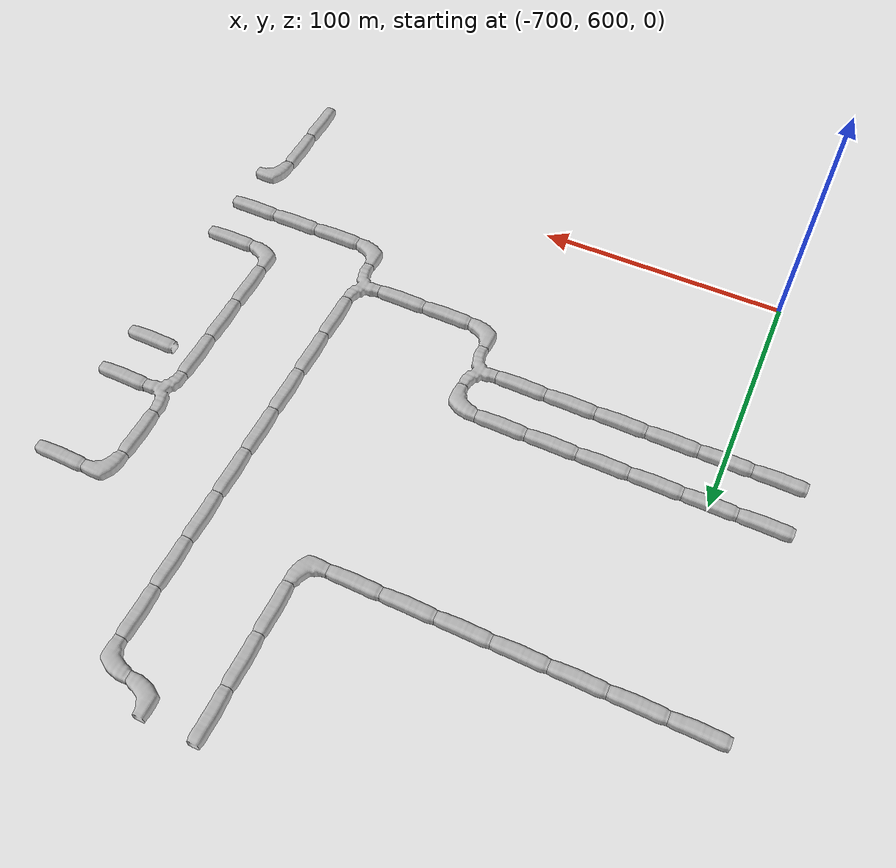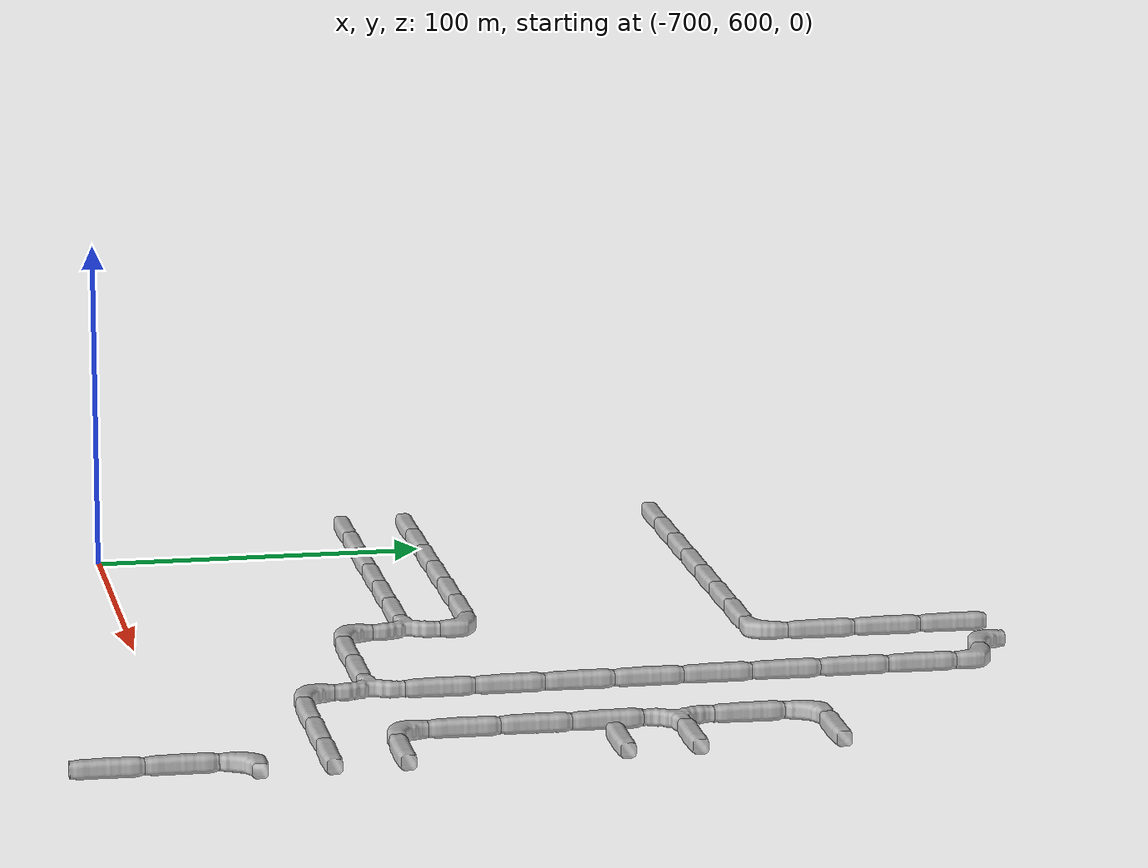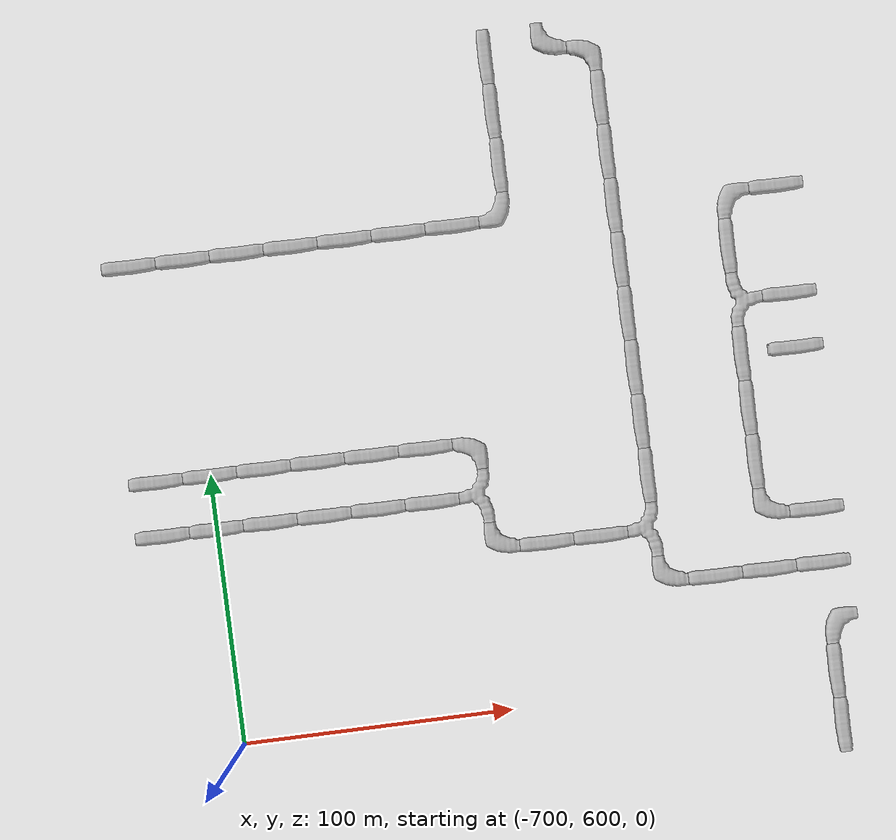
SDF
<sdf version="1.6">
 <world name="cave_32000">
  <include>
   <static>true</static>
   <name>cave_-24_29</name>
   <pose>-480 580 0 0 0 0.0</pose>
   <uri>model://cave_straight_20m</uri>
  </include>
  <include>
   <static>true</static>
   <name>cave_-24_30</name>
   <pose>-480 600 0 0 0 0.0</pose>
   <uri>model://cave_straight_20m</uri>
  </include>
  <include>
   <static>true</static>
   <name>cave_-24_31</name>
   <pose>-480 620 0 0 0 -1.5707963267948966</pose>
   <uri>model://cave_L_20m</uri>
  </include>
  <include>
   <static>true</static>
   <name>cave_-24_32</name>
   <pose>-480 640 0 0 0 1.5707963267948966</pose>
   <uri>model://cave_straight_20m</uri>
  </include>
  <include>
   <static>true</static>
   <name>cave_-25_32</name>
   <pose>-500 640 0 0 0 1.5707963267948966</pose>
   <uri>model://cave_straight_20m</uri>
  </include>
  <include>
   <static>true</static>
   <name>cave_-26_32</name>
   <pose>-520 640 0 0 0 1.5707963267948966</pose>
   <uri>model://cave_straight_20m</uri>
  </include>
  <include>
   <static>true</static>
   <name>cave_-27_32</name>
   <pose>-540 640 0 0 0 0.0</pose>
   <uri>model://cave_L_20m</uri>
  </include>
  <include>
   <static>true</static>
   <name>cave_-27_33</name>
   <pose>-540 660 0 0 0 1.5707963267948966</pose>
   <uri>model://cave_3way_20m</uri>
  </include>
  <include>
   <static>true</static>
   <name>cave_-28_33</name>
   <pose>-560 660 0 0 0 1.5707963267948966</pose>
   <uri>model://cave_straight_20m</uri>
  </include>
  <include>
   <static>true</static>
   <name>cave_-29_33</name>
   <pose>-580 660 0 0 0 1.5707963267948966</pose>
   <uri>model://cave_straight_20m</uri>
  </include>
  <include>
   <static>true</static>
   <name>cave_-30_33</name>
   <pose>-600 660 0 0 0 0.0</pose>
   <uri>model://cave_L_20m</uri>
  </include>
  <include>
   <static>true</static>
   <name>cave_-30_34</name>
   <pose>-600 680 0 0 0 1.5707963267948966</pose>
   <uri>model://cave_3way_20m</uri>
  </include>
  <include>
   <static>true</static>
   <name>cave_-31_34</name>
   <pose>-620 680 0 0 0 1.5707963267948966</pose>
   <uri>model://cave_straight_20m</uri>
  </include>
  <include>
   <static>true</static>
   <name>cave_-32_34</name>
   <pose>-640 680 0 0 0 1.5707963267948966</pose>
   <uri>model://cave_straight_20m</uri>
  </include>
  <include>
   <static>true</static>
   <name>cave_-33_34</name>
   <pose>-660 680 0 0 0 1.5707963267948966</pose>
   <uri>model://cave_straight_20m</uri>
  </include>
  <include>
   <static>true</static>
   <name>cave_-34_34</name>
   <pose>-680 680 0 0 0 1.5707963267948966</pose>
   <uri>model://cave_straight_20m</uri>
  </include>
  <include>
   <static>true</static>
   <name>cave_-35_34</name>
   <pose>-700 680 0 0 0 1.5707963267948966</pose>
   <uri>model://cave_straight_20m</uri>
  </include>
  <include>
   <static>true</static>
   <name>cave_-36_34</name>
   <pose>-720 680 0 0 0 1.5707963267948966</pose>
   <uri>model://cave_straight_20m</uri>
  </include>
  <include>
   <static>true</static>
   <name>cave_-30_35</name>
   <pose>-600 700 0 0 0 3.141592653589793</pose>
   <uri>model://cave_L_20m</uri>
  </include>
  <include>
   <static>true</static>
   <name>cave_-31_35</name>
   <pose>-620 700 0 0 0 1.5707963267948966</pose>
   <uri>model://cave_straight_20m</uri>
  </include>
  <include>
   <static>true</static>
   <name>cave_-32_35</name>
   <pose>-640 700 0 0 0 1.5707963267948966</pose>
   <uri>model://cave_straight_20m</uri>
  </include>
  <include>
   <static>true</static>
   <name>cave_-33_35</name>
   <pose>-660 700 0 0 0 1.5707963267948966</pose>
   <uri>model://cave_straight_20m</uri>
  </include>
  <include>
   <static>true</static>
   <name>cave_-34_35</name>
   <pose>-680 700 0 0 0 1.5707963267948966</pose>
   <uri>model://cave_straight_20m</uri>
  </include>
  <include>
   <static>true</static>
   <name>cave_-35_35</name>
   <pose>-700 700 0 0 0 1.5707963267948966</pose>
   <uri>model://cave_straight_20m</uri>
  </include>
  <include>
   <static>true</static>
   <name>cave_-36_35</name>
   <pose>-720 700 0 0 0 1.5707963267948966</pose>
   <uri>model://cave_straight_20m</uri>
  </include>
  <include>
   <static>true</static>
   <name>cave_-36_39</name>
   <pose>-720 780 0 0 0 1.5707963267948966</pose>
   <uri>model://cave_straight_20m</uri>
  </include>
  <include>
   <static>true</static>
   <name>cave_-35_39</name>
   <pose>-700 780 0 0 0 1.5707963267948966</pose>
   <uri>model://cave_straight_20m</uri>
  </include>
  <include>
   <static>true</static>
   <name>cave_-34_39</name>
   <pose>-680 780 0 0 0 1.5707963267948966</pose>
   <uri>model://cave_straight_20m</uri>
  </include>
  <include>
   <static>true</static>
   <name>cave_-33_39</name>
   <pose>-660 780 0 0 0 1.5707963267948966</pose>
   <uri>model://cave_straight_20m</uri>
  </include>
  <include>
   <static>true</static>
   <name>cave_-32_39</name>
   <pose>-640 780 0 0 0 1.5707963267948966</pose>
   <uri>model://cave_straight_20m</uri>
  </include>
  <include>
   <static>true</static>
   <name>cave_-31_39</name>
   <pose>-620 780 0 0 0 1.5707963267948966</pose>
   <uri>model://cave_straight_20m</uri>
  </include>
  <include>
   <static>true</static>
   <name>cave_-30_39</name>
   <pose>-600 780 0 0 0 1.5707963267948966</pose>
   <uri>model://cave_straight_20m</uri>
  </include>
  <include>
   <static>true</static>
   <name>cave_-29_39</name>
   <pose>-580 780 0 0 0 1.5707963267948966</pose>
   <uri>model://cave_L_20m</uri>
  </include>
  <include>
   <static>true</static>
   <name>cave_-29_40</name>
   <pose>-580 800 0 0 0 0.0</pose>
   <uri>model://cave_straight_20m</uri>
  </include>
  <include>
   <static>true</static>
   <name>cave_-29_41</name>
   <pose>-580 820 0 0 0 0.0</pose>
   <uri>model://cave_straight_20m</uri>
  </include>
  <include>
   <static>true</static>
   <name>cave_-29_42</name>
   <pose>-580 840 0 0 0 0.0</pose>
   <uri>model://cave_straight_20m</uri>
  </include>
  <include>
   <static>true</static>
   <name>cave_-27_34</name>
   <pose>-540 680 0 0 0 0.0</pose>
   <uri>model://cave_straight_20m</uri>
  </include>
  <include>
   <static>true</static>
   <name>cave_-27_35</name>
   <pose>-540 700 0 0 0 0.0</pose>
   <uri>model://cave_straight_20m</uri>
  </include>
  <include>
   <static>true</static>
   <name>cave_-27_36</name>
   <pose>-540 720 0 0 0 0.0</pose>
   <uri>model://cave_straight_20m</uri>
  </include>
  <include>
   <static>true</static>
   <name>cave_-27_37</name>
   <pose>-540 740 0 0 0 0.0</pose>
   <uri>model://cave_straight_20m</uri>
  </include>
  <include>
   <static>true</static>
   <name>cave_-27_38</name>
   <pose>-540 760 0 0 0 0.0</pose>
   <uri>model://cave_straight_20m</uri>
  </include>
  <include>
   <static>true</static>
   <name>cave_-27_39</name>
   <pose>-540 780 0 0 0 0.0</pose>
   <uri>model://cave_straight_20m</uri>
  </include>
  <include>
   <static>true</static>
   <name>cave_-27_40</name>
   <pose>-540 800 0 0 0 0.0</pose>
   <uri>model://cave_straight_20m</uri>
  </include>
  <include>
   <static>true</static>
   <name>cave_-27_41</name>
   <pose>-540 820 0 0 0 0.0</pose>
   <uri>model://cave_straight_20m</uri>
  </include>
  <include>
   <static>true</static>
   <name>cave_-27_42</name>
   <pose>-540 840 0 0 0 3.141592653589793</pose>
   <uri>model://cave_L_20m</uri>
  </include>
  <include>
   <static>true</static>
   <name>cave_-28_42</name>
   <pose>-560 840 0 0 0 0.0</pose>
   <uri>model://cave_L_20m</uri>
  </include>
  <include>
   <static>true</static>
   <name>cave_-24_33</name>
   <pose>-480 660 0 0 0 1.5707963267948966</pose>
   <uri>model://cave_straight_20m</uri>
  </include>
  <include>
   <static>true</static>
   <name>cave_-25_33</name>
   <pose>-500 660 0 0 0 0.0</pose>
   <uri>model://cave_L_20m</uri>
  </include>
  <include>
   <static>true</static>
   <name>cave_-25_34</name>
   <pose>-500 680 0 0 0 0.0</pose>
   <uri>model://cave_straight_20m</uri>
  </include>
  <include>
   <static>true</static>
   <name>cave_-25_35</name>
   <pose>-500 700 0 0 0 0.0</pose>
   <uri>model://cave_straight_20m</uri>
  </include>
  <include>
   <static>true</static>
   <name>cave_-25_36</name>
   <pose>-500 720 0 0 0 0.0</pose>
   <uri>model://cave_straight_20m</uri>
  </include>
  <include>
   <static>true</static>
   <name>cave_-25_37</name>
   <pose>-500 740 0 0 0 -1.5707963267948966</pose>
   <uri>model://cave_3way_20m</uri>
  </include>
  <include>
   <static>true</static>
   <name>cave_-24_37</name>
   <pose>-480 740 0 0 0 1.5707963267948966</pose>
   <uri>model://cave_straight_20m</uri>
  </include>
  <include>
   <static>true</static>
   <name>cave_-24_36</name>
   <pose>-480 720 0 0 0 1.5707963267948966</pose>
   <uri>model://cave_straight_20m</uri>
  </include>
  <include>
   <static>true</static>
   <name>cave_-25_38</name>
   <pose>-500 760 0 0 0 0.0</pose>
   <uri>model://cave_straight_20m</uri>
  </include>
  <include>
   <static>true</static>
   <name>cave_-25_39</name>
   <pose>-500 780 0 0 0 -1.5707963267948966</pose>
   <uri>model://cave_L_20m</uri>
  </include>
  <include>
   <static>true</static>
   <name>cave_-24_39</name>
   <pose>-480 780 0 0 0 1.5707963267948966</pose>
   <uri>model://cave_straight_20m</uri>
  </include>
 </world>
</sdf>
